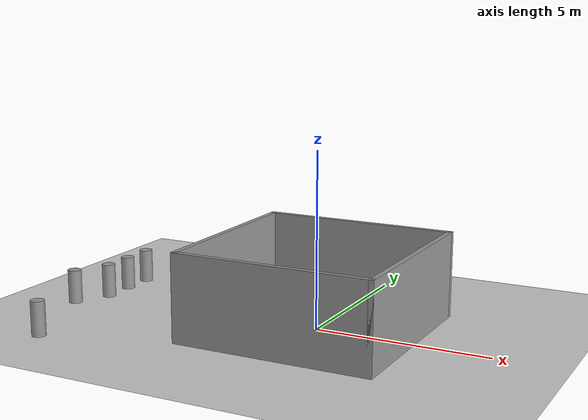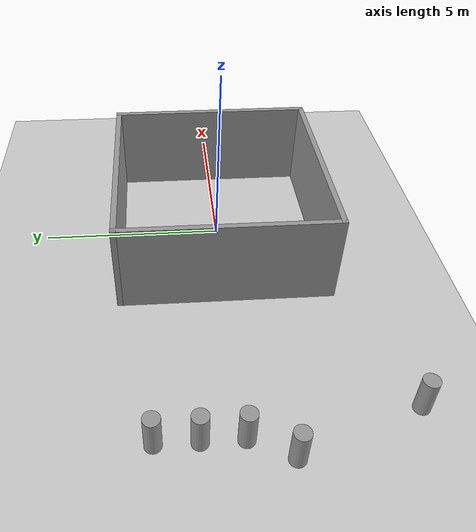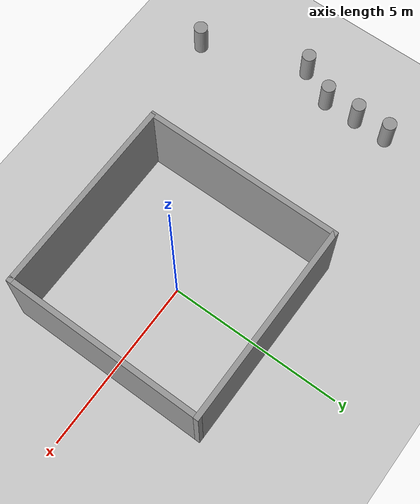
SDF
<sdf version="1.4">
 <world name="default">
  <light name="sun" type="directional">
   <pose>0 0 10 0 -0 0</pose>
   <diffuse>0.8 0.8 0.8 1</diffuse>
   <specular>0.2 0.2 0.2 1</specular>
   <attenuation>
    <range>1000</range>
    <constant>0.9</constant>
    <linear>0.01</linear>
    <quadratic>0.001</quadratic>
   </attenuation>
   <direction>-0.5 0.1 -0.9</direction>
  </light>
  <model name="ground_plane">
   <static>1</static>
   <link name="link">
    <collision name="collision">
     <geometry><plane><normal>0 0 1</normal><size>100 100</size></plane></geometry>
     <surface><friction><ode><mu>100</mu><mu2>50</mu2></ode></friction></surface>
    </collision>
    <visual name="visual">
     <cast_shadows>0</cast_shadows>
     <geometry><plane><normal>0 0 1</normal><size>100 100</size></plane></geometry>
     <material>
      <script><uri>file://media/materials/scripts/gazebo.material</uri><name>Gazebo/Grey</name></script>
     </material>
    </visual>
    <velocity_decay><linear>0</linear><angular>0</angular></velocity_decay>
   </link>
  </model>
  <physics type="ode">
   <max_step_size>0.001</max_step_size>
   <real_time_factor>1</real_time_factor>
   <real_time_update_rate>1000</real_time_update_rate>
   <gravity>0 0 -9.8</gravity>
  </physics>
  <scene><ambient>0.4 0.4 0.4 1</ambient><background>0.7 0.7 0.7 1</background><shadows>1</shadows></scene>
  <spherical_coordinates>
   <surface_model>EARTH_WGS84</surface_model>
   <latitude_deg>0</latitude_deg>
   <longitude_deg>0</longitude_deg>
   <elevation>0</elevation>
   <heading_deg>0</heading_deg>
  </spherical_coordinates>
  <model name="vRoom">
   <pose>0.000183 -0.001607 0 0 -0 0</pose>
   <link name="Wall_0">
    <collision name="Wall_0_Collision">
     <geometry><box><size>5.75 0.15 2.5</size></box></geometry>
     <pose>0 0 1.25 0 -0 0</pose>
    </collision>
    <visual name="Wall_0_Visual">
     <pose>0 0 1.25 0 -0 0</pose>
     <geometry><box><size>5.75 0.15 2.5</size></box></geometry>
     <material>
      <script><uri>file://media/materials/scripts/gazebo.material</uri><name>Gazebo/Grey</name></script>
      <ambient>1 1 1 1</ambient>
     </material>
    </visual>
    <pose>-2.8 -0 0 0 0 -1.5708</pose>
    <velocity_decay><linear>0</linear><angular>0</angular></velocity_decay>
   </link>
   <link name="Wall_1">
    <collision name="Wall_1_Collision">
     <geometry><box><size>5.75 0.15 2.5</size></box></geometry>
     <pose>0 0 1.25 0 -0 0</pose>
    </collision>
    <visual name="Wall_1_Visual">
     <pose>0 0 1.25 0 -0 0</pose>
     <geometry><box><size>5.75 0.15 2.5</size></box></geometry>
     <material>
      <script><uri>file://media/materials/scripts/gazebo.material</uri><name>Gazebo/Grey</name></script>
      <ambient>1 1 1 1</ambient>
     </material>
    </visual>
    <pose>0 -2.8 0 0 -0 0</pose>
    <velocity_decay><linear>0</linear><angular>0</angular></velocity_decay>
   </link>
   <link name="Wall_2">
    <collision name="Wall_2_Collision">
     <geometry><box><size>5.75 0.15 2.5</size></box></geometry>
     <pose>0 0 1.25 0 -0 0</pose>
    </collision>
    <visual name="Wall_2_Visual">
     <pose>0 0 1.25 0 -0 0</pose>
     <geometry><box><size>5.75 0.15 2.5</size></box></geometry>
     <material>
      <script><uri>file://media/materials/scripts/gazebo.material</uri><name>Gazebo/Grey</name></script>
      <ambient>1 1 1 1</ambient>
     </material>
    </visual>
    <pose>2.8 -0 0 0 -0 1.5708</pose>
    <velocity_decay><linear>0</linear><angular>0</angular></velocity_decay>
   </link>
   <link name="Wall_3">
    <collision name="Wall_3_Collision">
     <geometry><box><size>5.75 0.15 2.5</size></box></geometry>
     <pose>0 0 1.25 0 -0 0</pose>
    </collision>
    <visual name="Wall_3_Visual">
     <pose>0 0 1.25 0 -0 0</pose>
     <geometry><box><size>5.75 0.15 2.5</size></box></geometry>
     <material>
      <script><uri>file://media/materials/scripts/gazebo.material</uri><name>Gazebo/Grey</name></script>
      <ambient>1 1 1 1</ambient>
     </material>
    </visual>
    <pose>0 2.8 0 0 -0 3.14159</pose>
    <velocity_decay><linear>0</linear><angular>0</angular></velocity_decay>
   </link>
   <static>1</static>
  </model>
  <model name="unit_cylinder_1">
   <pose>-6.44289 -4 0.499991 0 -0 2e-06</pose>
   <link name="link">
    <inertial>
     <mass>1</mass>
     <inertia><ixx>1</ixx><ixy>0</ixy><ixz>0</ixz><iyy>1</iyy><iyz>0</iyz><izz>1</izz></inertia>
    </inertial>
    <collision name="collision">
     <geometry><cylinder><radius>0.2</radius><length>1</length></cylinder></geometry>
    </collision>
    <visual name="visual">
     <geometry><cylinder><radius>0.2</radius><length>1</length></cylinder></geometry>
     <material>
      <script><uri>file://media/materials/scripts/gazebo.material</uri><name>Gazebo/Grey</name></script>
     </material>
    </visual>
    <velocity_decay><linear>0</linear><angular>0</angular></velocity_decay>
   </link>
   <static>0</static>
  </model>
  <model name="unit_cylinder_2">
   <pose>-7.50875 -1 0.499998 0 -0 0</pose>
   <link name="link">
    <inertial>
     <mass>1</mass>
     <inertia><ixx>1</ixx><ixy>0</ixy><ixz>0</ixz><iyy>1</iyy><iyz>0</iyz><izz>1</izz></inertia>
    </inertial>
    <collision name="collision">
     <geometry><cylinder><radius>0.2</radius><length>1</length></cylinder></geometry>
    </collision>
    <visual name="visual">
     <geometry><cylinder><radius>0.2</radius><length>1</length></cylinder></geometry>
     <material>
      <script><uri>file://media/materials/scripts/gazebo.material</uri><name>Gazebo/Grey</name></script>
     </material>
    </visual>
    <velocity_decay><linear>0</linear><angular>0</angular></velocity_decay>
   </link>
   <static>0</static>
  </model>
  <model name="unit_cylinder_3">
   <pose>-7 2 0.499992 0 -0 0</pose>
   <link name="link">
    <inertial>
     <mass>1</mass>
     <inertia><ixx>1</ixx><ixy>0</ixy><ixz>0</ixz><iyy>1</iyy><iyz>0</iyz><izz>1</izz></inertia>
    </inertial>
    <collision name="collision">
     <geometry><cylinder><radius>0.2</radius><length>1</length></cylinder></geometry>
    </collision>
    <visual name="visual">
     <geometry><cylinder><radius>0.2</radius><length>1</length></cylinder></geometry>
     <material>
      <script><uri>file://media/materials/scripts/gazebo.material</uri><name>Gazebo/Grey</name></script>
     </material>
    </visual>
    <velocity_decay><linear>0</linear><angular>0</angular></velocity_decay>
   </link>
   <static>0</static>
  </model>
  <model name="unit_cylinder_4">
   <pose>-7 1 0.499992 0 -0 0</pose>
   <link name="link">
    <inertial>
     <mass>1</mass>
     <inertia><ixx>1</ixx><ixy>0</ixy><ixz>0</ixz><iyy>1</iyy><iyz>0</iyz><izz>1</izz></inertia>
    </inertial>
    <collision name="collision">
     <geometry><cylinder><radius>0.2</radius><length>1</length></cylinder></geometry>
    </collision>
    <visual name="visual">
     <geometry><cylinder><radius>0.2</radius><length>1</length></cylinder></geometry>
     <material>
      <script><uri>file://media/materials/scripts/gazebo.material</uri><name>Gazebo/Grey</name></script>
     </material>
    </visual>
    <velocity_decay><linear>0</linear><angular>0</angular></velocity_decay>
   </link>
   <static>0</static>
  </model>
  <model name="unit_cylinder_5">
   <pose>-7 0 0.499992 0 -0 0</pose>
   <link name="link">
    <inertial>
     <mass>1</mass>
     <inertia><ixx>1</ixx><ixy>0</ixy><ixz>0</ixz><iyy>1</iyy><iyz>0</iyz><izz>1</izz></inertia>
    </inertial>
    <collision name="collision">
     <geometry><cylinder><radius>0.2</radius><length>1</length></cylinder></geometry>
    </collision>
    <visual name="visual">
     <geometry><cylinder><radius>0.2</radius><length>1</length></cylinder></geometry>
     <material>
      <script><uri>file://media/materials/scripts/gazebo.material</uri><name>Gazebo/Grey</name></script>
     </material>
    </visual>
    <velocity_decay><linear>0</linear><angular>0</angular></velocity_decay>
   </link>
   <static>0</static>
  </model>
 </world>
</sdf>
